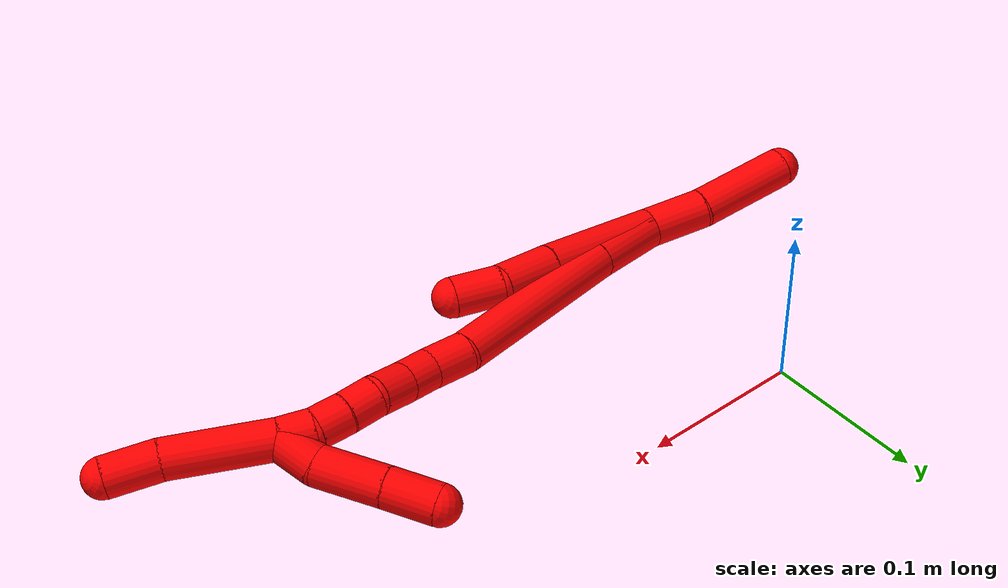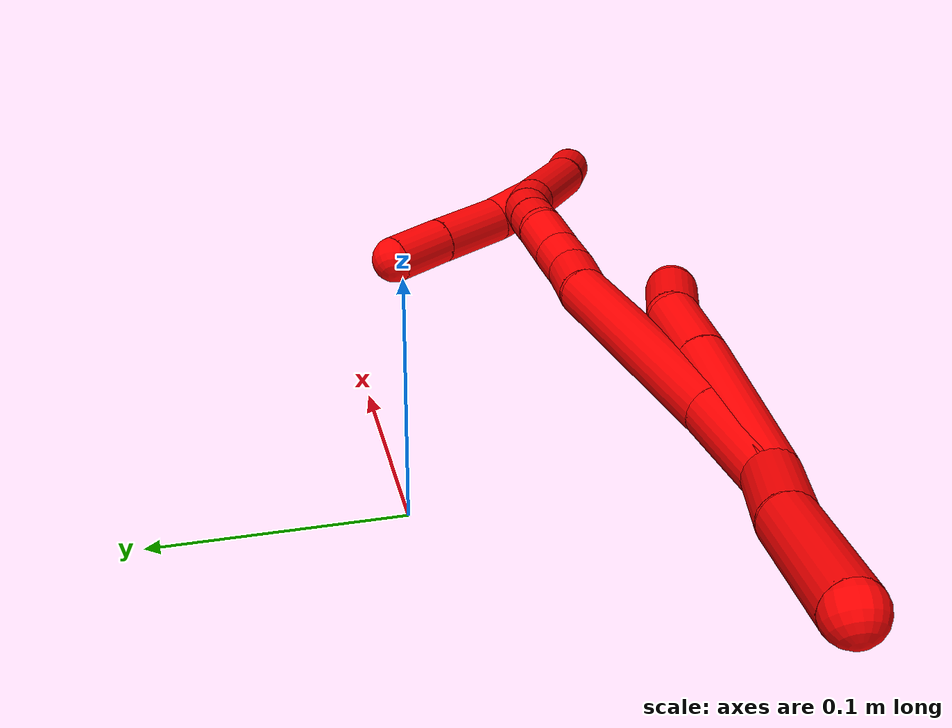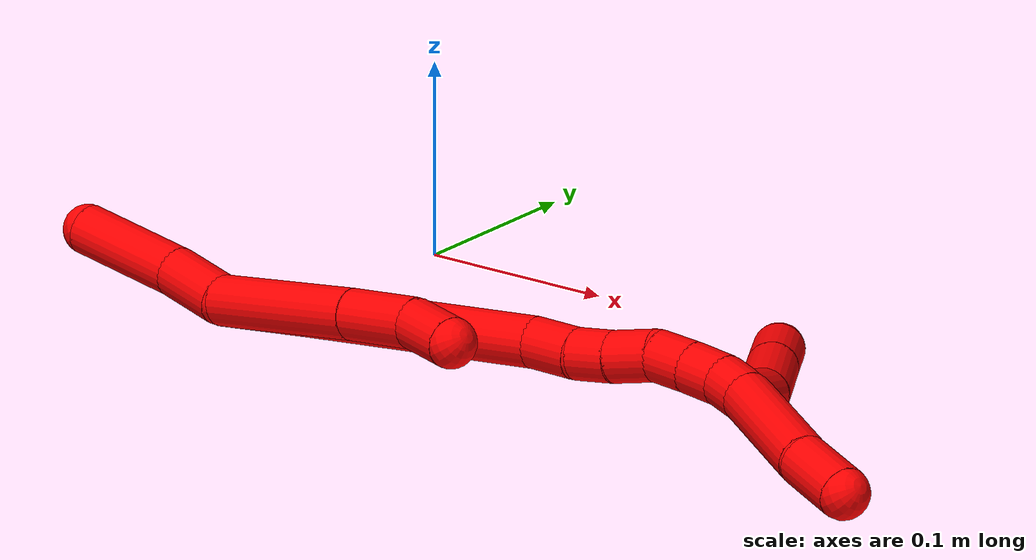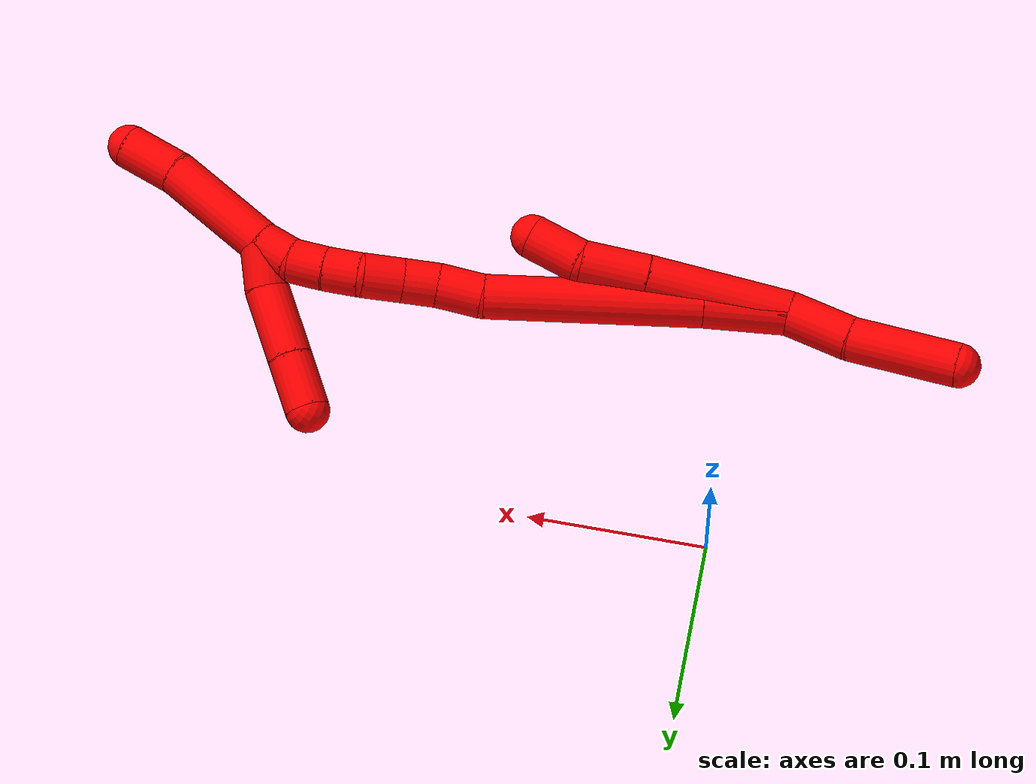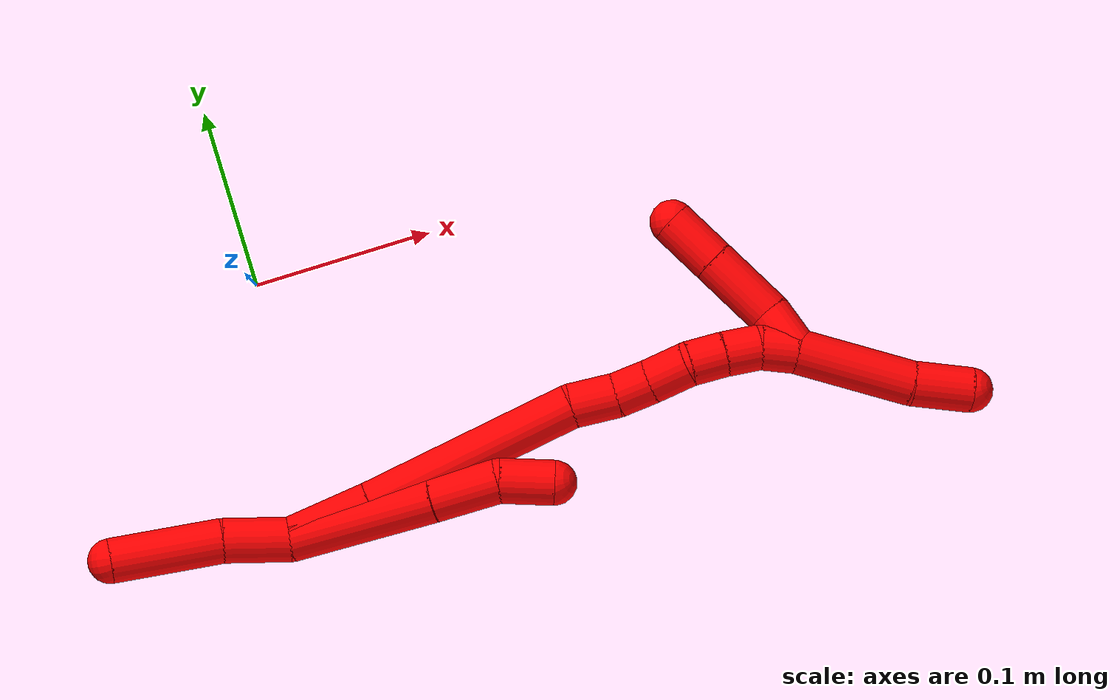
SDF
<sdf version="1.7">
 <world name="default">
  <model name="2">
   <static>0</static>
   <link name="2">
    <collision name="collision-cylinder-e_1_2_8">
     <pose>0.015995 -0.003762 0.037467 0.100083 0.401673 0.020391</pose>
     <geometry><cylinder><radius>0.0125</radius><length>0.081823</length></cylinder></geometry>
     <surface>
      <friction><ode><mu>1.16</mu><mu2>1.16</mu2><slip1>0</slip1><slip2>0</slip2></ode></friction>
      <contact><ode><kp>1e+06</kp><kd>1</kd><max_vel>0</max_vel><min_depth>0.001</min_depth></ode></contact>
     </surface>
    </collision>
    <visual name="visual-cylinder-e_1_2_8">
     <pose>0.015995 -0.003762 0.037467 0.100083 0.401673 0.020391</pose>
     <geometry><cylinder><radius>0.0125</radius><length>0.081823</length></cylinder></geometry>
     <material><ambient>1 0 0 1</ambient></material>
    </visual>
    <collision name="collision-cylinder-e_2_8_9">
     <pose>0.040095 -0.009233 0.091867 0.100567 0.444462 0.022743</pose>
     <geometry><cylinder><radius>0.0125</radius><length>0.037701</length></cylinder></geometry>
     <surface>
      <friction><ode><mu>1.16</mu><mu2>1.16</mu2><slip1>0</slip1><slip2>0</slip2></ode></friction>
      <contact><ode><kp>1e+06</kp><kd>1</kd><max_vel>0</max_vel><min_depth>0.001</min_depth></ode></contact>
     </surface>
    </collision>
    <visual name="visual-cylinder-e_2_8_9">
     <pose>0.040095 -0.009233 0.091867 0.100567 0.444462 0.022743</pose>
     <geometry><cylinder><radius>0.0125</radius><length>0.037701</length></cylinder></geometry>
     <material><ambient>1 0 0 1</ambient></material>
    </visual>
    <collision name="collision-cylinder-e_3_9_6">
     <pose>0.053574 -0.017308 0.121559 0.462814 0.36042 0.085804</pose>
     <geometry><cylinder><radius>0.0125</radius><length>0.030476</length></cylinder></geometry>
     <surface>
      <friction><ode><mu>1.16</mu><mu2>1.16</mu2><slip1>0</slip1><slip2>0</slip2></ode></friction>
      <contact><ode><kp>1e+06</kp><kd>1</kd><max_vel>0</max_vel><min_depth>0.001</min_depth></ode></contact>
     </surface>
    </collision>
    <visual name="visual-cylinder-e_3_9_6">
     <pose>0.053574 -0.017308 0.121559 0.462814 0.36042 0.085804</pose>
     <geometry><cylinder><radius>0.0125</radius><length>0.030476</length></cylinder></geometry>
     <material><ambient>1 0 0 1</ambient></material>
    </visual>
    <collision name="collision-cylinder-e_1_2_10">
     <pose>-0.008434 0.00763 -0.015062 -2.67272 -0.463263 1.55831</pose>
     <geometry><cylinder><radius>0.0125</radius><length>0.037746</length></cylinder></geometry>
     <surface>
      <friction><ode><mu>1.16</mu><mu2>1.16</mu2><slip1>0</slip1><slip2>0</slip2></ode></friction>
      <contact><ode><kp>1e+06</kp><kd>1</kd><max_vel>0</max_vel><min_depth>0.001</min_depth></ode></contact>
     </surface>
    </collision>
    <visual name="visual-cylinder-e_1_2_10">
     <pose>-0.008434 0.00763 -0.015062 -2.67272 -0.463263 1.55831</pose>
     <geometry><cylinder><radius>0.0125</radius><length>0.037746</length></cylinder></geometry>
     <material><ambient>1 0 0 1</ambient></material>
    </visual>
    <collision name="collision-cylinder-e_2_10_5">
     <pose>-0.033611 0.023835 -0.054923 -2.80864 -0.567939 2.09682</pose>
     <geometry><cylinder><radius>0.0125</radius><length>0.062254</length></cylinder></geometry>
     <surface>
      <friction><ode><mu>1.16</mu><mu2>1.16</mu2><slip1>0</slip1><slip2>0</slip2></ode></friction>
      <contact><ode><kp>1e+06</kp><kd>1</kd><max_vel>0</max_vel><min_depth>0.001</min_depth></ode></contact>
     </surface>
    </collision>
    <visual name="visual-cylinder-e_2_10_5">
     <pose>-0.033611 0.023835 -0.054923 -2.80864 -0.567939 2.09682</pose>
     <geometry><cylinder><radius>0.0125</radius><length>0.062254</length></cylinder></geometry>
     <material><ambient>1 0 0 1</ambient></material>
    </visual>
    <collision name="collision-cylinder-e_1_2_11">
     <pose>0.012236 0.000266 0.020824 -0.012757 0.531222 -0.00347</pose>
     <geometry><cylinder><radius>0.0125</radius><length>0.048309</length></cylinder></geometry>
     <surface>
      <friction><ode><mu>1.16</mu><mu2>1.16</mu2><slip1>0</slip1><slip2>0</slip2></ode></friction>
      <contact><ode><kp>1e+06</kp><kd>1</kd><max_vel>0</max_vel><min_depth>0.001</min_depth></ode></contact>
     </surface>
    </collision>
    <visual name="visual-cylinder-e_1_2_11">
     <pose>0.012236 0.000266 0.020824 -0.012757 0.531222 -0.00347</pose>
     <geometry><cylinder><radius>0.0125</radius><length>0.048309</length></cylinder></geometry>
     <material><ambient>1 0 0 1</ambient></material>
    </visual>
    <collision name="collision-cylinder-e_2_11_12">
     <pose>0.057509 0.002587 0.092943 -0.040051 0.571807 -0.011775</pose>
     <geometry><cylinder><radius>0.0125</radius><length>0.122094</length></cylinder></geometry>
     <surface>
      <friction><ode><mu>1.16</mu><mu2>1.16</mu2><slip1>0</slip1><slip2>0</slip2></ode></friction>
      <contact><ode><kp>1e+06</kp><kd>1</kd><max_vel>0</max_vel><min_depth>0.001</min_depth></ode></contact>
     </surface>
    </collision>
    <visual name="visual-cylinder-e_2_11_12">
     <pose>0.057509 0.002587 0.092943 -0.040051 0.571807 -0.011775</pose>
     <geometry><cylinder><radius>0.0125</radius><length>0.122094</length></cylinder></geometry>
     <material><ambient>1 0 0 1</ambient></material>
    </visual>
    <collision name="collision-cylinder-e_3_12_13">
     <pose>0.096602 0.002379 0.155429 0.199546 0.487769 0.04981</pose>
     <geometry><cylinder><radius>0.0125</radius><length>0.02585</length></cylinder></geometry>
     <surface>
      <friction><ode><mu>1.16</mu><mu2>1.16</mu2><slip1>0</slip1><slip2>0</slip2></ode></friction>
      <contact><ode><kp>1e+06</kp><kd>1</kd><max_vel>0</max_vel><min_depth>0.001</min_depth></ode></contact>
     </surface>
    </collision>
    <visual name="visual-cylinder-e_3_12_13">
     <pose>0.096602 0.002379 0.155429 0.199546 0.487769 0.04981</pose>
     <geometry><cylinder><radius>0.0125</radius><length>0.02585</length></cylinder></geometry>
     <material><ambient>1 0 0 1</ambient></material>
    </visual>
    <collision name="collision-cylinder-e_4_13_14">
     <pose>0.107272 0.000147 0.175629 -0.003495 0.473197 -0.000843</pose>
     <geometry><cylinder><radius>0.0125</radius><length>0.020241</length></cylinder></geometry>
     <surface>
      <friction><ode><mu>1.16</mu><mu2>1.16</mu2><slip1>0</slip1><slip2>0</slip2></ode></friction>
      <contact><ode><kp>1e+06</kp><kd>1</kd><max_vel>0</max_vel><min_depth>0.001</min_depth></ode></contact>
     </surface>
    </collision>
    <visual name="visual-cylinder-e_4_13_14">
     <pose>0.107272 0.000147 0.175629 -0.003495 0.473197 -0.000843</pose>
     <geometry><cylinder><radius>0.0125</radius><length>0.020241</length></cylinder></geometry>
     <material><ambient>1 0 0 1</ambient></material>
    </visual>
    <collision name="collision-cylinder-e_5_14_15">
     <pose>0.116467 0.001119 0.195283 -0.088076 0.405067 -0.018098</pose>
     <geometry><cylinder><radius>0.0125</radius><length>0.023257</length></cylinder></geometry>
     <surface>
      <friction><ode><mu>1.16</mu><mu2>1.16</mu2><slip1>0</slip1><slip2>0</slip2></ode></friction>
      <contact><ode><kp>1e+06</kp><kd>1</kd><max_vel>0</max_vel><min_depth>0.001</min_depth></ode></contact>
     </surface>
    </collision>
    <visual name="visual-cylinder-e_5_14_15">
     <pose>0.116467 0.001119 0.195283 -0.088076 0.405067 -0.018098</pose>
     <geometry><cylinder><radius>0.0125</radius><length>0.023257</length></cylinder></geometry>
     <material><ambient>1 0 0 1</ambient></material>
    </visual>
    <collision name="collision-cylinder-e_6_15_16">
     <pose>0.12656 0.000277 0.214116 0.21431 0.5818 0.064387</pose>
     <geometry><cylinder><radius>0.0125</radius><length>0.020055</length></cylinder></geometry>
     <surface>
      <friction><ode><mu>1.16</mu><mu2>1.16</mu2><slip1>0</slip1><slip2>0</slip2></ode></friction>
      <contact><ode><kp>1e+06</kp><kd>1</kd><max_vel>0</max_vel><min_depth>0.001</min_depth></ode></contact>
     </surface>
    </collision>
    <visual name="visual-cylinder-e_6_15_16">
     <pose>0.12656 0.000277 0.214116 0.21431 0.5818 0.064387</pose>
     <geometry><cylinder><radius>0.0125</radius><length>0.020055</length></cylinder></geometry>
     <material><ambient>1 0 0 1</ambient></material>
    </visual>
    <collision name="collision-cylinder-e_7_16_17">
     <pose>0.137305 -0.003985 0.230546 0.292316 0.546339 0.082441</pose>
     <geometry><cylinder><radius>0.0125</radius><length>0.020151</length></cylinder></geometry>
     <surface>
      <friction><ode><mu>1.16</mu><mu2>1.16</mu2><slip1>0</slip1><slip2>0</slip2></ode></friction>
      <contact><ode><kp>1e+06</kp><kd>1</kd><max_vel>0</max_vel><min_depth>0.001</min_depth></ode></contact>
     </surface>
    </collision>
    <visual name="visual-cylinder-e_7_16_17">
     <pose>0.137305 -0.003985 0.230546 0.292316 0.546339 0.082441</pose>
     <geometry><cylinder><radius>0.0125</radius><length>0.020151</length></cylinder></geometry>
     <material><ambient>1 0 0 1</ambient></material>
    </visual>
    <collision name="collision-cylinder-e_8_17_1">
     <pose>0.146229 -0.011433 0.246672 0.562281 0.376952 0.110056</pose>
     <geometry><cylinder><radius>0.0125</radius><length>0.020041</length></cylinder></geometry>
     <surface>
      <friction><ode><mu>1.16</mu><mu2>1.16</mu2><slip1>0</slip1><slip2>0</slip2></ode></friction>
      <contact><ode><kp>1e+06</kp><kd>1</kd><max_vel>0</max_vel><min_depth>0.001</min_depth></ode></contact>
     </surface>
    </collision>
    <visual name="visual-cylinder-e_8_17_1">
     <pose>0.146229 -0.011433 0.246672 0.562281 0.376952 0.110056</pose>
     <geometry><cylinder><radius>0.0125</radius><length>0.020041</length></cylinder></geometry>
     <material><ambient>1 0 0 1</ambient></material>
    </visual>
    <collision name="collision-cylinder-e_1_1_18">
     <pose>0.159272 -0.037253 0.278746 0.711408 0.284953 0.106483</pose>
     <geometry><cylinder><radius>0.0125</radius><length>0.06656</length></cylinder></geometry>
     <surface>
      <friction><ode><mu>1.16</mu><mu2>1.16</mu2><slip1>0</slip1><slip2>0</slip2></ode></friction>
      <contact><ode><kp>1e+06</kp><kd>1</kd><max_vel>0</max_vel><min_depth>0.001</min_depth></ode></contact>
     </surface>
    </collision>
    <visual name="visual-cylinder-e_1_1_18">
     <pose>0.159272 -0.037253 0.278746 0.711408 0.284953 0.106483</pose>
     <geometry><cylinder><radius>0.0125</radius><length>0.06656</length></cylinder></geometry>
     <material><ambient>1 0 0 1</ambient></material>
    </visual>
    <collision name="collision-cylinder-e_2_18_4">
     <pose>0.175388 -0.066807 0.315512 0.605343 0.416234 0.131694</pose>
     <geometry><cylinder><radius>0.0125</radius><length>0.03344</length></cylinder></geometry>
     <surface>
      <friction><ode><mu>1.16</mu><mu2>1.16</mu2><slip1>0</slip1><slip2>0</slip2></ode></friction>
      <contact><ode><kp>1e+06</kp><kd>1</kd><max_vel>0</max_vel><min_depth>0.001</min_depth></ode></contact>
     </surface>
    </collision>
    <visual name="visual-cylinder-e_2_18_4">
     <pose>0.175388 -0.066807 0.315512 0.605343 0.416234 0.131694</pose>
     <geometry><cylinder><radius>0.0125</radius><length>0.03344</length></cylinder></geometry>
     <material><ambient>1 0 0 1</ambient></material>
    </visual>
    <collision name="collision-cylinder-e_1_1_19">
     <pose>0.155834 -0.00692 0.247996 -2.17601 0.474231 -0.864</pose>
     <geometry><cylinder><radius>0.0125</radius><length>0.025916</length></cylinder></geometry>
     <surface>
      <friction><ode><mu>1.16</mu><mu2>1.16</mu2><slip1>0</slip1><slip2>0</slip2></ode></friction>
      <contact><ode><kp>1e+06</kp><kd>1</kd><max_vel>0</max_vel><min_depth>0.001</min_depth></ode></contact>
     </surface>
    </collision>
    <visual name="visual-cylinder-e_1_1_19">
     <pose>0.155834 -0.00692 0.247996 -2.17601 0.474231 -0.864</pose>
     <geometry><cylinder><radius>0.0125</radius><length>0.025916</length></cylinder></geometry>
     <material><ambient>1 0 0 1</ambient></material>
    </visual>
    <collision name="collision-cylinder-e_2_19_20">
     <pose>0.165281 0.019891 0.229779 -2.16293 0.167402 -0.31252</pose>
     <geometry><cylinder><radius>0.0125</radius><length>0.042366</length></cylinder></geometry>
     <surface>
      <friction><ode><mu>1.16</mu><mu2>1.16</mu2><slip1>0</slip1><slip2>0</slip2></ode></friction>
      <contact><ode><kp>1e+06</kp><kd>1</kd><max_vel>0</max_vel><min_depth>0.001</min_depth></ode></contact>
     </surface>
    </collision>
    <visual name="visual-cylinder-e_2_19_20">
     <pose>0.165281 0.019891 0.229779 -2.16293 0.167402 -0.31252</pose>
     <geometry><cylinder><radius>0.0125</radius><length>0.042366</length></cylinder></geometry>
     <material><ambient>1 0 0 1</ambient></material>
    </visual>
    <collision name="collision-cylinder-e_3_20_3">
     <pose>0.171701 0.050037 0.209238 -2.17699 0.183241 -0.347447</pose>
     <geometry><cylinder><radius>0.0125</radius><length>0.031718</length></cylinder></geometry>
     <surface>
      <friction><ode><mu>1.16</mu><mu2>1.16</mu2><slip1>0</slip1><slip2>0</slip2></ode></friction>
      <contact><ode><kp>1e+06</kp><kd>1</kd><max_vel>0</max_vel><min_depth>0.001</min_depth></ode></contact>
     </surface>
    </collision>
    <visual name="visual-cylinder-e_3_20_3">
     <pose>0.171701 0.050037 0.209238 -2.17699 0.183241 -0.347447</pose>
     <geometry><cylinder><radius>0.0125</radius><length>0.031718</length></cylinder></geometry>
     <material><ambient>1 0 0 1</ambient></material>
    </visual>
    <collision name="collision-sphere-3">
     <pose>0.17459 0.062852 0.200353 0 -0 0</pose>
     <geometry><sphere><radius>0.0125</radius></sphere></geometry>
     <surface>
      <friction><ode><mu>1.16</mu><mu2>1.16</mu2><slip1>0</slip1><slip2>0</slip2></ode></friction>
      <contact><ode><kp>1e+06</kp><kd>1</kd><max_vel>0</max_vel><min_depth>0.001</min_depth></ode></contact>
     </surface>
    </collision>
    <visual name="visual-sphere-3">
     <pose>0.17459 0.062852 0.200353 0 -0 0</pose>
     <geometry><sphere><radius>0.0125</radius></sphere></geometry>
     <material><ambient>1 0 0 1</ambient></material>
    </visual>
    <collision name="collision-sphere-20">
     <pose>0.168811 0.037222 0.218122 0 -0 0</pose>
     <geometry><sphere><radius>0.0125</radius></sphere></geometry>
     <surface>
      <friction><ode><mu>1.16</mu><mu2>1.16</mu2><slip1>0</slip1><slip2>0</slip2></ode></friction>
      <contact><ode><kp>1e+06</kp><kd>1</kd><max_vel>0</max_vel><min_depth>0.001</min_depth></ode></contact>
     </surface>
    </collision>
    <visual name="visual-sphere-20">
     <pose>0.168811 0.037222 0.218122 0 -0 0</pose>
     <geometry><sphere><radius>0.0125</radius></sphere></geometry>
     <material><ambient>1 0 0 1</ambient></material>
    </visual>
    <collision name="collision-sphere-19">
     <pose>0.161752 0.002561 0.241437 0 -0 0</pose>
     <geometry><sphere><radius>0.0125</radius></sphere></geometry>
     <surface>
      <friction><ode><mu>1.16</mu><mu2>1.16</mu2><slip1>0</slip1><slip2>0</slip2></ode></friction>
      <contact><ode><kp>1e+06</kp><kd>1</kd><max_vel>0</max_vel><min_depth>0.001</min_depth></ode></contact>
     </surface>
    </collision>
    <visual name="visual-sphere-19">
     <pose>0.161752 0.002561 0.241437 0 -0 0</pose>
     <geometry><sphere><radius>0.0125</radius></sphere></geometry>
     <material><ambient>1 0 0 1</ambient></material>
    </visual>
    <collision name="collision-sphere-5">
     <pose>-0.050354 0.032412 -0.079722 0 -0 0</pose>
     <geometry><sphere><radius>0.0125</radius></sphere></geometry>
     <surface>
      <friction><ode><mu>1.16</mu><mu2>1.16</mu2><slip1>0</slip1><slip2>0</slip2></ode></friction>
      <contact><ode><kp>1e+06</kp><kd>1</kd><max_vel>0</max_vel><min_depth>0.001</min_depth></ode></contact>
     </surface>
    </collision>
    <visual name="visual-sphere-5">
     <pose>-0.050354 0.032412 -0.079722 0 -0 0</pose>
     <geometry><sphere><radius>0.0125</radius></sphere></geometry>
     <material><ambient>1 0 0 1</ambient></material>
    </visual>
    <collision name="collision-sphere-10">
     <pose>-0.016868 0.015259 -0.030124 0 -0 0</pose>
     <geometry><sphere><radius>0.0125</radius></sphere></geometry>
     <surface>
      <friction><ode><mu>1.16</mu><mu2>1.16</mu2><slip1>0</slip1><slip2>0</slip2></ode></friction>
      <contact><ode><kp>1e+06</kp><kd>1</kd><max_vel>0</max_vel><min_depth>0.001</min_depth></ode></contact>
     </surface>
    </collision>
    <visual name="visual-sphere-10">
     <pose>-0.016868 0.015259 -0.030124 0 -0 0</pose>
     <geometry><sphere><radius>0.0125</radius></sphere></geometry>
     <material><ambient>1 0 0 1</ambient></material>
    </visual>
    <collision name="collision-sphere-6">
     <pose>0.058948 -0.023674 0.134318 0 -0 0</pose>
     <geometry><sphere><radius>0.0125</radius></sphere></geometry>
     <surface>
      <friction><ode><mu>1.16</mu><mu2>1.16</mu2><slip1>0</slip1><slip2>0</slip2></ode></friction>
      <contact><ode><kp>1e+06</kp><kd>1</kd><max_vel>0</max_vel><min_depth>0.001</min_depth></ode></contact>
     </surface>
    </collision>
    <visual name="visual-sphere-6">
     <pose>0.058948 -0.023674 0.134318 0 -0 0</pose>
     <geometry><sphere><radius>0.0125</radius></sphere></geometry>
     <material><ambient>1 0 0 1</ambient></material>
    </visual>
    <collision name="collision-sphere-9">
     <pose>0.0482 -0.010942 0.1088 0 -0 0</pose>
     <geometry><sphere><radius>0.0125</radius></sphere></geometry>
     <surface>
      <friction><ode><mu>1.16</mu><mu2>1.16</mu2><slip1>0</slip1><slip2>0</slip2></ode></friction>
      <contact><ode><kp>1e+06</kp><kd>1</kd><max_vel>0</max_vel><min_depth>0.001</min_depth></ode></contact>
     </surface>
    </collision>
    <visual name="visual-sphere-9">
     <pose>0.0482 -0.010942 0.1088 0 -0 0</pose>
     <geometry><sphere><radius>0.0125</radius></sphere></geometry>
     <material><ambient>1 0 0 1</ambient></material>
    </visual>
    <collision name="collision-sphere-2">
     <geometry><sphere><radius>0.0125</radius></sphere></geometry>
     <surface>
      <friction><ode><mu>1.16</mu><mu2>1.16</mu2><slip1>0</slip1><slip2>0</slip2></ode></friction>
      <contact><ode><kp>1e+06</kp><kd>1</kd><max_vel>0</max_vel><min_depth>0.001</min_depth></ode></contact>
     </surface>
    </collision>
    <visual name="visual-sphere-2">
     <geometry><sphere><radius>0.0125</radius></sphere></geometry>
     <material><ambient>1 0 0 1</ambient></material>
    </visual>
    <collision name="collision-sphere-8">
     <pose>0.031989 -0.007525 0.074934 0 -0 0</pose>
     <geometry><sphere><radius>0.0125</radius></sphere></geometry>
     <surface>
      <friction><ode><mu>1.16</mu><mu2>1.16</mu2><slip1>0</slip1><slip2>0</slip2></ode></friction>
      <contact><ode><kp>1e+06</kp><kd>1</kd><max_vel>0</max_vel><min_depth>0.001</min_depth></ode></contact>
     </surface>
    </collision>
    <visual name="visual-sphere-8">
     <pose>0.031989 -0.007525 0.074934 0 -0 0</pose>
     <geometry><sphere><radius>0.0125</radius></sphere></geometry>
     <material><ambient>1 0 0 1</ambient></material>
    </visual>
    <collision name="collision-sphere-11">
     <pose>0.024473 0.000531 0.041648 0 -0 0</pose>
     <geometry><sphere><radius>0.0125</radius></sphere></geometry>
     <surface>
      <friction><ode><mu>1.16</mu><mu2>1.16</mu2><slip1>0</slip1><slip2>0</slip2></ode></friction>
      <contact><ode><kp>1e+06</kp><kd>1</kd><max_vel>0</max_vel><min_depth>0.001</min_depth></ode></contact>
     </surface>
    </collision>
    <visual name="visual-sphere-11">
     <pose>0.024473 0.000531 0.041648 0 -0 0</pose>
     <geometry><sphere><radius>0.0125</radius></sphere></geometry>
     <material><ambient>1 0 0 1</ambient></material>
    </visual>
    <collision name="collision-sphere-12">
     <pose>0.090544 0.004642 0.144238 0 -0 0</pose>
     <geometry><sphere><radius>0.0125</radius></sphere></geometry>
     <surface>
      <friction><ode><mu>1.16</mu><mu2>1.16</mu2><slip1>0</slip1><slip2>0</slip2></ode></friction>
      <contact><ode><kp>1e+06</kp><kd>1</kd><max_vel>0</max_vel><min_depth>0.001</min_depth></ode></contact>
     </surface>
    </collision>
    <visual name="visual-sphere-12">
     <pose>0.090544 0.004642 0.144238 0 -0 0</pose>
     <geometry><sphere><radius>0.0125</radius></sphere></geometry>
     <material><ambient>1 0 0 1</ambient></material>
    </visual>
    <collision name="collision-sphere-13">
     <pose>0.102659 0.000116 0.166621 0 -0 0</pose>
     <geometry><sphere><radius>0.0125</radius></sphere></geometry>
     <surface>
      <friction><ode><mu>1.16</mu><mu2>1.16</mu2><slip1>0</slip1><slip2>0</slip2></ode></friction>
      <contact><ode><kp>1e+06</kp><kd>1</kd><max_vel>0</max_vel><min_depth>0.001</min_depth></ode></contact>
     </surface>
    </collision>
    <visual name="visual-sphere-13">
     <pose>0.102659 0.000116 0.166621 0 -0 0</pose>
     <geometry><sphere><radius>0.0125</radius></sphere></geometry>
     <material><ambient>1 0 0 1</ambient></material>
    </visual>
    <collision name="collision-sphere-14">
     <pose>0.111884 0.000179 0.184638 0 -0 0</pose>
     <geometry><sphere><radius>0.0125</radius></sphere></geometry>
     <surface>
      <friction><ode><mu>1.16</mu><mu2>1.16</mu2><slip1>0</slip1><slip2>0</slip2></ode></friction>
      <contact><ode><kp>1e+06</kp><kd>1</kd><max_vel>0</max_vel><min_depth>0.001</min_depth></ode></contact>
     </surface>
    </collision>
    <visual name="visual-sphere-14">
     <pose>0.111884 0.000179 0.184638 0 -0 0</pose>
     <geometry><sphere><radius>0.0125</radius></sphere></geometry>
     <material><ambient>1 0 0 1</ambient></material>
    </visual>
    <collision name="collision-sphere-15">
     <pose>0.121049 0.002059 0.205929 0 -0 0</pose>
     <geometry><sphere><radius>0.0125</radius></sphere></geometry>
     <surface>
      <friction><ode><mu>1.16</mu><mu2>1.16</mu2><slip1>0</slip1><slip2>0</slip2></ode></friction>
      <contact><ode><kp>1e+06</kp><kd>1</kd><max_vel>0</max_vel><min_depth>0.001</min_depth></ode></contact>
     </surface>
    </collision>
    <visual name="visual-sphere-15">
     <pose>0.121049 0.002059 0.205929 0 -0 0</pose>
     <geometry><sphere><radius>0.0125</radius></sphere></geometry>
     <material><ambient>1 0 0 1</ambient></material>
    </visual>
    <collision name="collision-sphere-16">
     <pose>0.13207 -0.001505 0.222302 0 -0 0</pose>
     <geometry><sphere><radius>0.0125</radius></sphere></geometry>
     <surface>
      <friction><ode><mu>1.16</mu><mu2>1.16</mu2><slip1>0</slip1><slip2>0</slip2></ode></friction>
      <contact><ode><kp>1e+06</kp><kd>1</kd><max_vel>0</max_vel><min_depth>0.001</min_depth></ode></contact>
     </surface>
    </collision>
    <visual name="visual-sphere-16">
     <pose>0.13207 -0.001505 0.222302 0 -0 0</pose>
     <geometry><sphere><radius>0.0125</radius></sphere></geometry>
     <material><ambient>1 0 0 1</ambient></material>
    </visual>
    <collision name="collision-sphere-17">
     <pose>0.14254 -0.006466 0.238789 0 -0 0</pose>
     <geometry><sphere><radius>0.0125</radius></sphere></geometry>
     <surface>
      <friction><ode><mu>1.16</mu><mu2>1.16</mu2><slip1>0</slip1><slip2>0</slip2></ode></friction>
      <contact><ode><kp>1e+06</kp><kd>1</kd><max_vel>0</max_vel><min_depth>0.001</min_depth></ode></contact>
     </surface>
    </collision>
    <visual name="visual-sphere-17">
     <pose>0.14254 -0.006466 0.238789 0 -0 0</pose>
     <geometry><sphere><radius>0.0125</radius></sphere></geometry>
     <material><ambient>1 0 0 1</ambient></material>
    </visual>
    <collision name="collision-sphere-1">
     <pose>0.149917 -0.016401 0.254555 0 -0 0</pose>
     <geometry><sphere><radius>0.0125</radius></sphere></geometry>
     <surface>
      <friction><ode><mu>1.16</mu><mu2>1.16</mu2><slip1>0</slip1><slip2>0</slip2></ode></friction>
      <contact><ode><kp>1e+06</kp><kd>1</kd><max_vel>0</max_vel><min_depth>0.001</min_depth></ode></contact>
     </surface>
    </collision>
    <visual name="visual-sphere-1">
     <pose>0.149917 -0.016401 0.254555 0 -0 0</pose>
     <geometry><sphere><radius>0.0125</radius></sphere></geometry>
     <material><ambient>1 0 0 1</ambient></material>
    </visual>
    <collision name="collision-sphere-18">
     <pose>0.168628 -0.058105 0.302937 0 -0 0</pose>
     <geometry><sphere><radius>0.0125</radius></sphere></geometry>
     <surface>
      <friction><ode><mu>1.16</mu><mu2>1.16</mu2><slip1>0</slip1><slip2>0</slip2></ode></friction>
      <contact><ode><kp>1e+06</kp><kd>1</kd><max_vel>0</max_vel><min_depth>0.001</min_depth></ode></contact>
     </surface>
    </collision>
    <visual name="visual-sphere-18">
     <pose>0.168628 -0.058105 0.302937 0 -0 0</pose>
     <geometry><sphere><radius>0.0125</radius></sphere></geometry>
     <material><ambient>1 0 0 1</ambient></material>
    </visual>
    <collision name="collision-sphere-4">
     <pose>0.182148 -0.075509 0.328087 0 -0 0</pose>
     <geometry><sphere><radius>0.0125</radius></sphere></geometry>
     <surface>
      <friction><ode><mu>1.16</mu><mu2>1.16</mu2><slip1>0</slip1><slip2>0</slip2></ode></friction>
      <contact><ode><kp>1e+06</kp><kd>1</kd><max_vel>0</max_vel><min_depth>0.001</min_depth></ode></contact>
     </surface>
    </collision>
    <visual name="visual-sphere-4">
     <pose>0.182148 -0.075509 0.328087 0 -0 0</pose>
     <geometry><sphere><radius>0.0125</radius></sphere></geometry>
     <material><ambient>1 0 0 1</ambient></material>
    </visual>
    <inertial>
     <pose>0.077628 -0.002346 0.128667 0 -0 0</pose>
     <mass>0.75</mass>
     <inertia>
      <ixx>0.000274</ixx>
      <ixy>0</ixy>
      <ixz>0</ixz>
      <iyy>0.00029</iyy>
      <iyz>0</iyz>
      <izz>-8.8e-05</izz>
     </inertia>
    </inertial>
   </link>
   <pose>-0.022105 -0.140195 0.012063 0.704245 0.837083 0.700378</pose>
  </model>
 </world>
</sdf>
